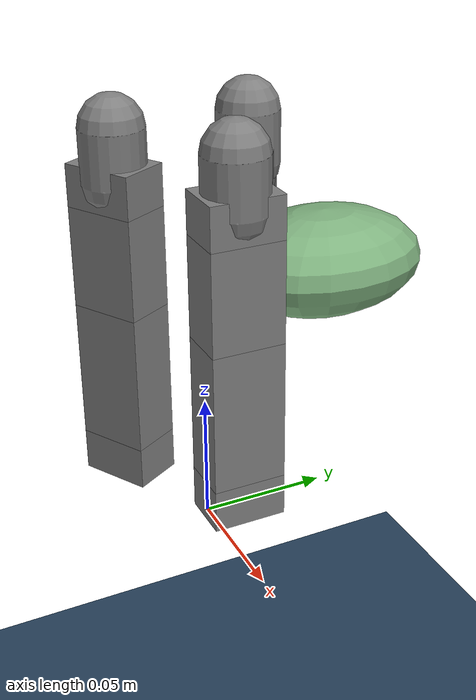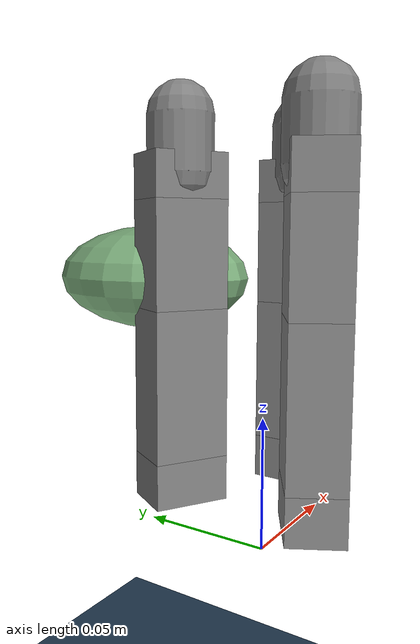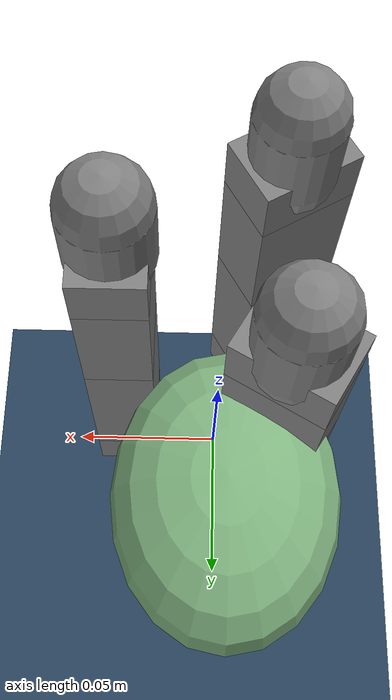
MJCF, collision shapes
<mujoco model="tri_finger_hand scene">
  <include file="tri_finger_hand.xml"/>

  <statistic center="0 0 0" extent="0.3"/>

  <visual>
    <rgba haze="0.15 0.25 0.35 1"/>
    <quality shadowsize="8192"/>
    <global azimuth="130" elevation="-40"/>
  </visual>

  <asset>
    <texture type="skybox" builtin="gradient" rgb1="0.3 0.5 0.7" rgb2="0 0 0" width="512" height="3072"/>
    <texture type="2d" name="groundplane" builtin="checker" mark="edge"
             rgb1="0.2 0.3 0.4" rgb2="0.1 0.2 0.3" markrgb="0.8 0.8 0.8"
             width="300" height="300"/>
    <material name="groundplane" texture="groundplane" texuniform="true"
              texrepeat="5 5" reflectance="0.2"/>
  </asset>

  <worldbody>
    <light pos="0 0 1"/>
    <light pos="0.3 0 1.5" dir="0 0 -1" directional="true"/>

    <geom name="floor" type="plane" pos="0 0 -0.1" size="0 0 0.05" material="groundplane"/>

    <body name="hand" pos="0 0 0.1">
      <freejoint/>
      <body childclass="tri_finger_hand"/>
    </body>

    <body name="object" pos="0 0.05 0.1">
      <freejoint/>
      <geom type="ellipsoid" size="0.03 0.04 0.02" rgba="0.5 0.7 0.5 1"
            condim="6" priority="1" friction="0.7 0.002 0.002"/>
    </body>
  </worldbody>
</mujoco>

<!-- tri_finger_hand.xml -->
<mujoco model="tri_finger_hand">
  <compiler angle="radian" meshdir="assets" autolimits="true"/>
  <option cone="elliptic" impratio="10"/>

  <default>
    <default class="tri_finger_hand">
      <joint axis="0 1 0" damping="0.1"/>
      <position kp="1"/>
      <geom density="800"/>

      <default class="visual">
        <geom type="mesh" contype="0" conaffinity="0" group="2" material="black"/>
        <default class="base_visual"><geom mesh="link_0.0"/></default>
        <default class="proximal_visual"><geom mesh="link_1.0"/></default>
        <default class="medial_visual"><geom mesh="link_2.0"/></default>
        <default class="distal_visual"><geom mesh="link_3.0"/></default>
        <default class="fingertip_visual"><geom pos="0 0 0.0267" material="white" mesh="link_3.0_tip"/></default>
      </default>

      <default class="collision">
        <geom group="3" type="box" size="0.01 0.01 0.01" density="1000"/>
        <default class="base_collision"><geom size="0.0098 0.01375 0.0082" pos="0 0 0.0082"/></default>
        <default class="proximal_collision"><geom size="0.0098 0.01375 0.027" pos="0 0 0.027"/></default>
        <default class="medial_collision"><geom size="0.0098 0.01375 0.0192" pos="0 0 0.0192"/></default>
        <default class="distal_collision"><geom size="0.0098 0.01375 0.008" pos="0 0 0.008"/></default>
        <default class="fingertip_collision"><geom type="capsule" size="0.012 0.01" pos="0 0 0.019"/></default>
      </default>

      <default class="base"><joint axis="0 0 1" range="-0.47 0.47"/><position ctrlrange="-0.47 0.47"/></default>
      <default class="proximal"><joint range="-0.196 1.61"/><position ctrlrange="-0.196 1.61"/></default>
      <default class="medial"><joint range="-0.174 1.709"/><position ctrlrange="-0.174 1.709"/></default>
      <default class="distal"><joint range="-0.227 1.618"/><position ctrlrange="-0.227 1.618"/></default>
    </default>
  </default>

  <asset>
    <material name="black" rgba="0.2 0.2 0.2 1"/>
    <material name="white" rgba="0.9 0.9 0.9 1"/>
    <mesh file="link_0.0.stl"/>
    <mesh file="link_1.0.stl"/>
    <mesh file="link_2.0.stl"/>
    <mesh file="link_3.0.stl"/>
    <mesh file="link_3.0_tip.stl"/>
  </asset>

  <worldbody>
    <body name="palm" pos="0 0 0.02" childclass="tri_finger_hand">
      <!-- Finger 1 (0 deg) -->
      <body name="f1_base" pos="0.03 0 0" quat="1 0 0 0">
        <joint name="f1j0" class="base"/>
        <geom class="base_visual"/>
        <geom class="base_collision"/>
        <body name="f1_proximal" pos="0 0 0.0164">
          <joint name="f1j1" class="proximal"/>
          <geom class="proximal_visual"/>
          <geom class="proximal_collision"/>
          <body name="f1_medial" pos="0 0 0.054">
            <joint name="f1j2" class="medial"/>
            <geom class="medial_visual"/>
            <geom class="medial_collision"/>
            <body name="f1_distal" pos="0 0 0.0384">
              <joint name="f1j3" class="distal"/>
              <geom class="distal_visual"/>
              <geom class="distal_collision"/>
              <body name="f1_tip">
                <geom class="fingertip_visual"/>
                <geom class="fingertip_collision"/>
              </body>
            </body>
          </body>
        </body>
      </body>
      <!-- Finger 2 (120 deg) -->
      <body name="f2_base" pos="-0.015 0.02598 0" quat="0.866 0 0 0.5">
        <joint name="f2j0" class="base"/>
        <geom class="base_visual"/>
        <geom class="base_collision"/>
        <body name="f2_proximal" pos="0 0 0.0164">
          <joint name="f2j1" class="proximal"/>
          <geom class="proximal_visual"/>
          <geom class="proximal_collision"/>
          <body name="f2_medial" pos="0 0 0.054">
            <joint name="f2j2" class="medial"/>
            <geom class="medial_visual"/>
            <geom class="medial_collision"/>
            <body name="f2_distal" pos="0 0 0.0384">
              <joint name="f2j3" class="distal"/>
              <geom class="distal_visual"/>
              <geom class="distal_collision"/>
              <body name="f2_tip">
                <geom class="fingertip_visual"/>
                <geom class="fingertip_collision"/>
              </body>
            </body>
          </body>
        </body>
      </body>
      <!-- Finger 3 (240 deg) -->
      <body name="f3_base" pos="-0.015 -0.02598 0" quat="0.866 0 0 -0.5">
        <joint name="f3j0" class="base"/>
        <geom class="base_visual"/>
        <geom class="base_collision"/>
        <body name="f3_proximal" pos="0 0 0.0164">
          <joint name="f3j1" class="proximal"/>
          <geom class="proximal_visual"/>
          <geom class="proximal_collision"/>
          <body name="f3_medial" pos="0 0 0.054">
            <joint name="f3j2" class="medial"/>
            <geom class="medial_visual"/>
            <geom class="medial_collision"/>
            <body name="f3_distal" pos="0 0 0.0384">
              <joint name="f3j3" class="distal"/>
              <geom class="distal_visual"/>
              <geom class="distal_collision"/>
              <body name="f3_tip">
                <geom class="fingertip_visual"/>
                <geom class="fingertip_collision"/>
              </body>
            </body>
          </body>
        </body>
      </body>
    </body>
  </worldbody>

  <actuator>
    <position name="f1a0" joint="f1j0" class="base"/>
    <position name="f1a1" joint="f1j1" class="proximal"/>
    <position name="f1a2" joint="f1j2" class="medial"/>
    <position name="f1a3" joint="f1j3" class="distal"/>
    <position name="f2a0" joint="f2j0" class="base"/>
    <position name="f2a1" joint="f2j1" class="proximal"/>
    <position name="f2a2" joint="f2j2" class="medial"/>
    <position name="f2a3" joint="f2j3" class="distal"/>
    <position name="f3a0" joint="f3j0" class="base"/>
    <position name="f3a1" joint="f3j1" class="proximal"/>
    <position name="f3a2" joint="f3j2" class="medial"/>
    <position name="f3a3" joint="f3j3" class="distal"/>
  </actuator>
</mujoco>
